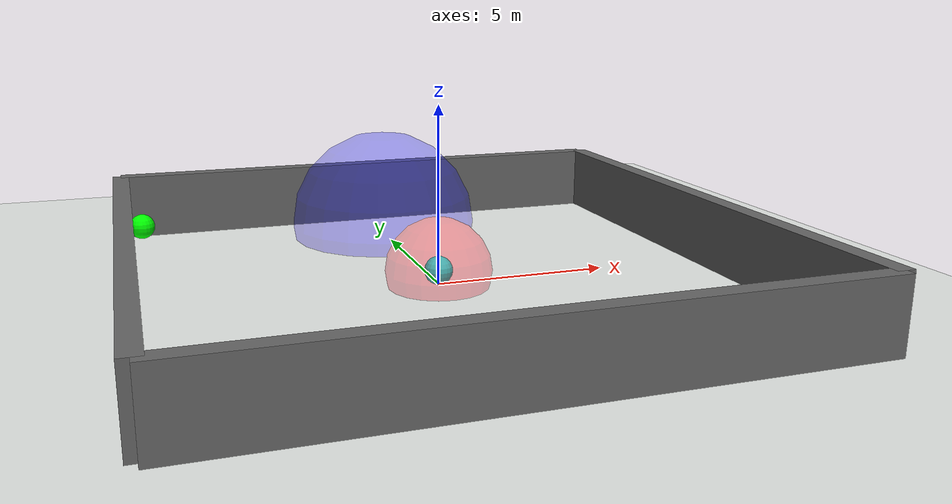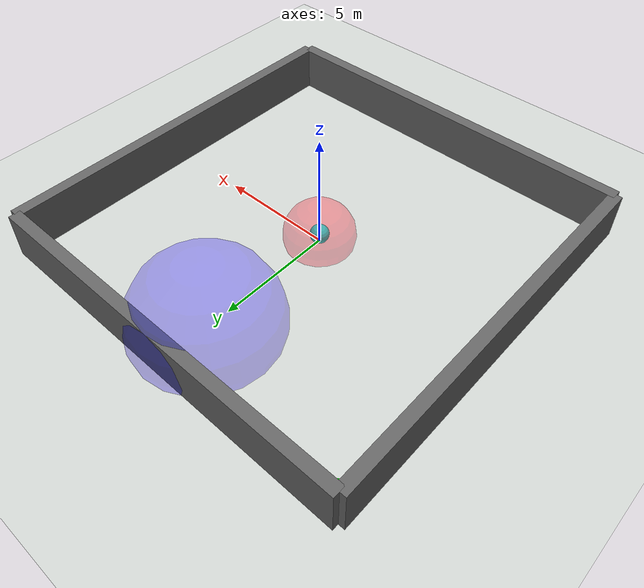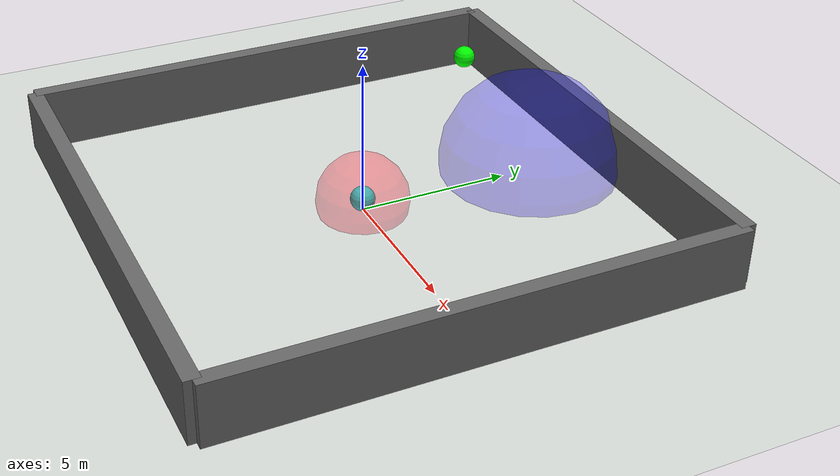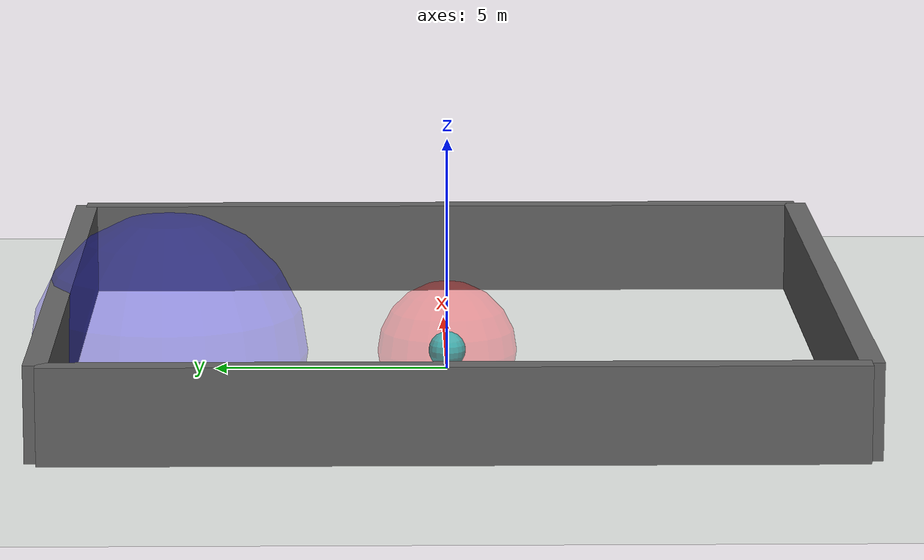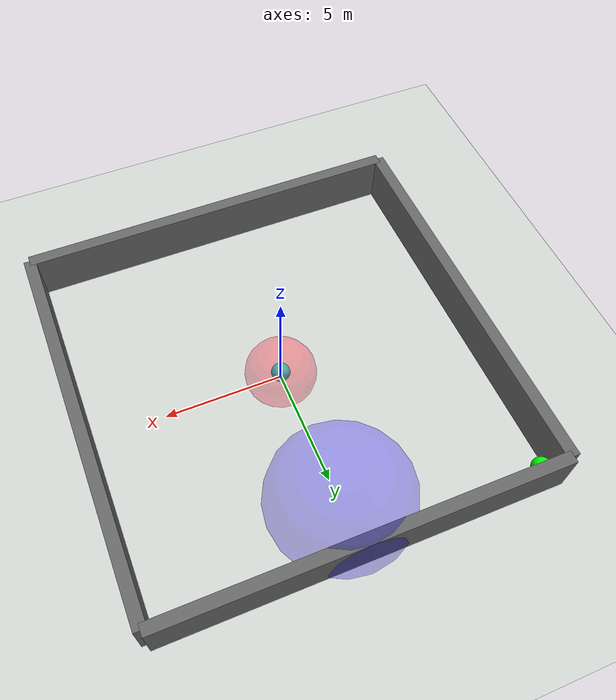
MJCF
<mujoco model="ant">
  <compiler angle="degree" coordinate="local" inertiafromgeom="true"/>
  <option integrator="RK4" timestep="0.02"/>
  <custom>
    <numeric data="0.0 0.0 0.55 1.0 0.0 0.0 0.0 0.0 1.0 0.0 -1.0 0.0 -1.0 0.0 1.0" name="init_qpos"/>
  </custom>
  <default>
    <joint armature="1" damping="1" limited="true"/>
    <geom conaffinity="0" condim="3" density="5.0" friction="1 0.5 0.5" margin="0.01" rgba="0.8 0.6 0.4 1"/>
  </default>
  <asset>
    <texture builtin="gradient" height="100" rgb1="1 1 1" rgb2="0 0 0" type="skybox" width="100"/>
    <texture builtin="flat" height="1278" mark="cross" markrgb="1 1 1" name="texgeom" random="0.01" rgb1="0.8 0.6 0.4" rgb2="0.8 0.6 0.4" type="cube" width="127"/>
    <texture builtin="checker" height="100" name="texplane" rgb1="0 0 0" rgb2="0.8 0.8 0.8" type="2d" width="100"/>
    <material name="MatPlane" reflectance="0.5" shininess="1" specular="1" texrepeat="60 60" texture="texplane"/>
    <material name="geom" texture="texgeom" texuniform="true"/>
  </asset>
  <worldbody>
    <light cutoff="100" diffuse="1 1 1" dir="-0 0 -1.3" directional="true" exponent="1" pos="0 0 1.3" specular=".1 .1 .1"/>
    <geom conaffinity="1" condim="3" material="MatPlane" name="floor" pos="0 0 0" rgba="0.8 0.9 0.8 1" size="40 40 40" type="plane"/>

    <!-- Create Barriers -->
    <body name="east_wall" pos="8.25 0. 1">
      <geom type="box" size="0.25 8.25 1" contype="1" conaffinity="1" rgba="0.4 0.4 0.4 1" />
    </body>
    <body name="north_wall" pos="0 8.25 1">
      <geom type="box" size="8.25 0.25 1" contype="1" conaffinity="1" rgba="0.4 0.4 0.4 1" />
    </body>
    <body name="west_wall" pos="-8.25 0. 1">
      <geom type="box" size="0.25 8.25 1" contype="1" conaffinity="1" rgba="0.4 0.4 0.4 1" />
    </body>

    <body name="south_wall" pos="0 -8.25 1">
      <geom type="box" size="8.25 0.25 1" contype="1" conaffinity="1" rgba="0.4 0.4 0.4 1" />
    </body>

    <!-- Create goal and subgoal visualizations -->

    <body name="opponent" pos="-7.7 7.7 0.4" mocap="true">
        <site name="opponent" type="sphere" size="0.4" rgba="0 1 0 1" />
    </body>

    <body name="visible_area" pos="0.0 6.0 0.4" mocap="true">
        <site type="sphere" size="3.0" rgba="0 0 1 0.3" />
    </body>

    <body name="tag_area" pos="0.0 0.0 0.4" mocap="true">
        <site type="sphere" size="1.5" rgba="1 0 0 0.3" />
    </body>

    <body name="robot" pos="0.0 0.0 0.4" mocap="true">
        <site name="robot" type="sphere" size="0.4" rgba="0 1 1 1" />
    </body>

    <!-- Subgoals -->
    <body name="subgoal_0" pos="0 0 0.4" mocap="true">
        <site type="box" size="0.4 0.4 0.2" rgba="1 0 1 0" />
    </body>

    <body name="subgoal_1" pos="0 0 0.4" mocap="true">
        <site type="box" size="0.4 0.4 0.2" rgba="0 1 0 0" />
    </body>

  </worldbody>
</mujoco>
